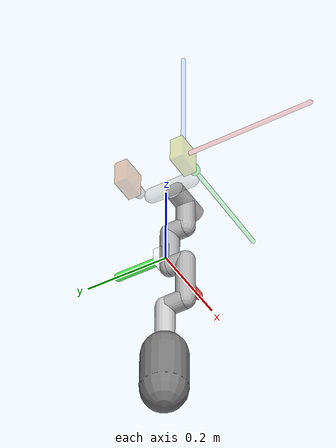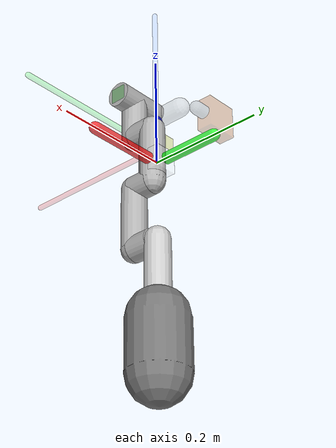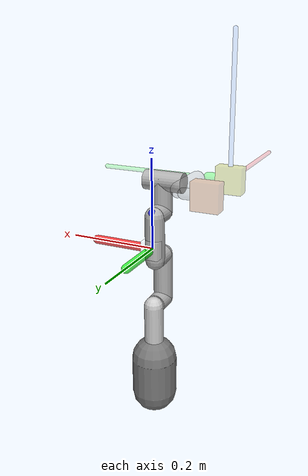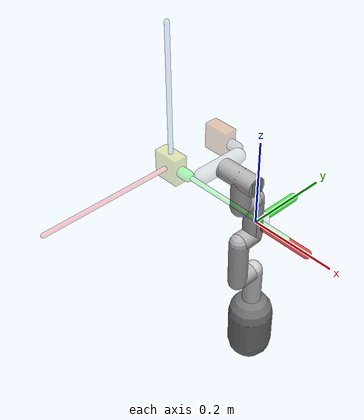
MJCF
<mujoco>
  <option gravity="0 0 0" integrator="implicitfast" timestep="0.002" cone="elliptic" impratio="3" noslip_iterations="6"/>
    <compiler angle="degree"/>
    <visual>
        <headlight active="0"/>
    </visual>

    <worldbody>
        <light cutoff="100" ambient=".3 .3 .3" diffuse="1 1 1" specular=".8 .8 .8" directional="false" pos="5 -3 7" castshadow="false"/>
        <light cutoff="100" ambient=".2 .2 .2" diffuse=".6 .6 .6" specular=".7 .7 .7" directional="false" pos="-3 -7 4" castshadow="false"/>

        <body name="mocap_body" mocap="true" pos="0 0 0">
            <geom type="box" size=".02 .02 .02" contype="0" conaffinity="0" rgba="1 1 1 0.1"/>
        </body>

        <body name="cursor" pos="0 0 0" mocap="true">
            <geom name="x_axis" type="capsule" size="0.01 0.25" fromto="0 0 0  0.14 0 0" contype="0" conaffinity="0" rgba="1 0 0 0.7"/>
            <geom name="y_axis" type="capsule" size="0.01 0.25" fromto="0 0 0  0 0.12 0" contype="0" conaffinity="0" rgba="0 1 0 0.7"/>
            <geom name="z_axis" type="capsule" size="0.01 0.25" fromto="0 0 0  0 0 0.08" contype="0" conaffinity="0" rgba="0 0 1 0.7"/>
        </body>

        <body name = "A" pos="0 0 -.4">
            <geom type="capsule" size="0.052" fromto="0 0 0.04 0 0 0.126" rgba="0.47 0.47 0.47 1"/>
            <geom type="capsule" size="0.022" fromto="0 0 0.1 0 0 0.26" contype="0" conaffinity="0" rgba="0.8 .8 .8 1"/>
            <joint name="joint1" type="hinge" range="-165 165" axis="0 0 1"/>
            <body name="B" pos="0 -.05 .26">
                <geom type="capsule" size="0.022" fromto="0 0 0 0 0 0.11" rgba="0.7 0.7 0.7 1"/>
                <geom type="cylinder" size="0.0221" fromto="0 0 0 0 0.04 0" rgba="0.7 0.7 0.7 1"/>
                <joint name="joint2" type="hinge" range="-165 165" axis="0 1 0"/>
                <body name="C" pos="0 0.04 0.11">
                    <geom type="capsule" size="0.022" fromto="0 0 0 0 0 0.1" rgba="0.7 0.7 0.7 1"/>
                    <geom type="cylinder" size="0.0221" fromto="0 0 0 0 -.04 0" rgba="0.7 0.7 0.7 1"/>
                    <joint name="joint3" type="hinge" range="-165 165" axis="0 1 0"/>
                    <body name="D" pos="0 -.04 0.1">
                        <joint name="joint4" type="hinge" range="-165 165" axis="0 1 0"/>
                        <geom type="capsule" size="0.022" fromto="0 0 0 0 0 0.07" rgba="0.7 0.7 0.7 1"/>
                        <geom type="cylinder" size="0.0221" fromto="0 0 0 0 0.04 0" rgba="0.7 0.7 0.7 1"/>
                        <body name="E" pos="0 0 0.07" xyaxes="0 -1 0 1 0 0">
                            <joint name="joint5" type="hinge" range="-165 165" axis="0 0 1"/>
                            <geom type="cylinder" size="0.022" fromto="0 -.05 0 0 0.04 0" rgba="0.7 0.7 0.7 1"/>
                            <body pos="0 0.026 0">
                                <geom type="box" size="0.0133 0.015 0.0133" rgba="0 0.6 0 .31"/>
                            </body>
                            <body name="F" pos="0 -.06 0">
                                <geom type="capsule" size="0.017" fromto="-.05 0 0 0.05 0 0" rgba="0.7 0.7 0.7 .31"/>
                                <joint name="joint6" type="hinge" range="-180 180" axis="0 -1 0"/>
                                <body name="end_effector" pos="0.07 -.07 0">
                                <geom type="capsule" fromto="0 0 0  .31 0 0" size="0.005" contype="0" conaffinity="0" mass="1" rgba="1 0 0 .21"/>
                                <geom type="capsule" fromto="0 0 0  0 .31 0" size="0.005" contype="0" conaffinity="0" mass="1" rgba="0 1 0 .21"/>
                                <geom type="capsule" fromto="0 0 0  0 0 .31" size="0.005" contype="0" conaffinity="0" mass="1" rgba=".4 .6 1 .21"/>
                                    <geom type="capsule" size="0.012" fromto="0 -.01 0 0 0.05 0" rgba="0 1 0 .31"/>
                                    <body>
                                        <geom type="box" size="0.015 0.03 0.03" rgba="0.7 0.7 0 .31"/>
                                    </body>
                                </body>
                                <body name="H" pos="-.07 -.07 0">
                                    <geom type="capsule" size="0.012" fromto="0 -.01 0 0 0.05 0" rgba="0.5 0.5 0.5 .31"/>
                                    <body>
                                        <geom type="box" size="0.015 0.03 0.03" rgba="0.7 0.3 0 .31"/>
                                    </body>
                                </body>
                            </body>
                        </body>
                    </body>
                </body>
            </body>
        </body>
    </worldbody>

    <equality>
        <weld body1="mocap_body" body2="cursor" solref="0.01 1" solimp="0.9 0.95 0.001"/>
    </equality>

    <actuator>
        <position name="BASE_A" inheritrange="1" kp="60" kv="12" joint="joint1"/>
        <position name="A_B" inheritrange="1" kp="120" kv="24" joint="joint2"/>
        <position name="B_C" inheritrange="1" kp="60" kv="12" joint="joint3"/>
        <position name="C_D" inheritrange="1" kp="60" kv="12" joint="joint4"/>
        <position name="D_E" inheritrange="1" kp="20" kv="4" joint="joint5"/>
        <position name="E_F" inheritrange="1" kp="6" kv="1" joint="joint6"/>
    </actuator>
</mujoco>
